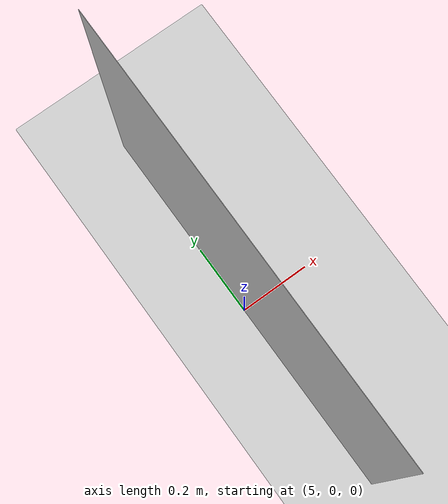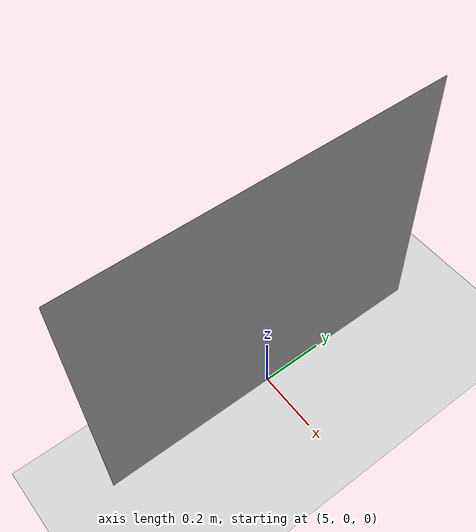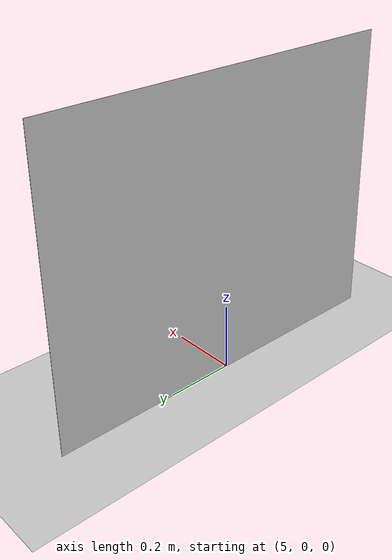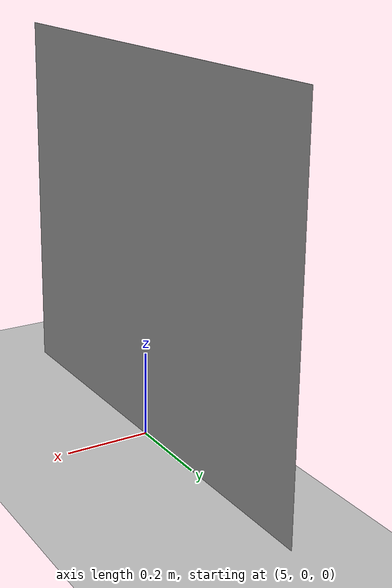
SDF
<?xml version="1.0" ?>
<sdf version="1.4">
  <world name="default">

    <!-- A global light source -->
    <light name='sun' type='directional'>
      <cast_shadows>1</cast_shadows>
      <pose frame=''>0 0 10 3.14 3.14 0</pose>
      <diffuse>0.8 0.8 0.8 1</diffuse>
      <specular>0.1 0.1 0.1 1</specular>
      <attenuation>
        <range>1000</range>
        <constant>0.9</constant>
        <linear>0.01</linear>
        <quadratic>0.001</quadratic>
      </attenuation>
      <direction>-0.5 0.5 -1</direction>
    </light>

    <!-- A ground plane -->
    <include>
      <uri>model://ground_plane</uri>
    </include>

    <!-- camera calibration checkerboard -->
    <include>
      <uri>model://calibration_obj</uri>
    </include>

    <!-- Only one ROS interface plugin is required per world, as any other plugin can connect a Gazebo
         topic to a ROS topic (or vise versa). -->
    <plugin name="ros_interface_plugin" filename="librotors_gazebo_ros_interface_plugin.so"/>

    <physics name='default_physics' default='0' type='ode'>
      <gravity>0 0 -9.8066</gravity>
      <ode>
        <solver>
          <type>quick</type>
          <iters>10</iters>
          <sor>1.3</sor>
          <use_dynamic_moi_rescaling>0</use_dynamic_moi_rescaling>
        </solver>
        <constraints>
          <cfm>0</cfm>
          <erp>0.2</erp>
          <contact_max_correcting_vel>100</contact_max_correcting_vel>
          <contact_surface_layer>0.001</contact_surface_layer>
        </constraints>
      </ode>
      <max_step_size>0.002</max_step_size>
      <real_time_factor>1</real_time_factor>
      <real_time_update_rate>500</real_time_update_rate>
      <magnetic_field>6e-06 2.3e-05 -4.2e-05</magnetic_field>
    </physics>

    <gui fullscreen='0'>
      <camera name='user_camera'>
        <pose frame=''>-2 -4 3 0 0.39270 0.78534</pose>
      </camera>
    </gui>

  </world>
</sdf>

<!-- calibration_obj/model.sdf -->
<sdf version="1.6">
<model name='checkerboard'>
  <pose>5 0 0.4445 0 0 0</pose>
  <link name='checkerboard_link'>
    <gravity>0</gravity>

    <visual name='visual'>
      <geometry>
        <box>
          <size>0.001 1.118 0.889</size>
        </box>
      </geometry>
      <material>
        <script>
          <uri>model://calibration_obj/materials/scripts</uri>
          <uri>model://calibration_obj/materials/textures</uri>
          <name>calibration_obj/check-108</name>
        </script>
      </material>
    </visual>
  </link>

</model>
</sdf>
